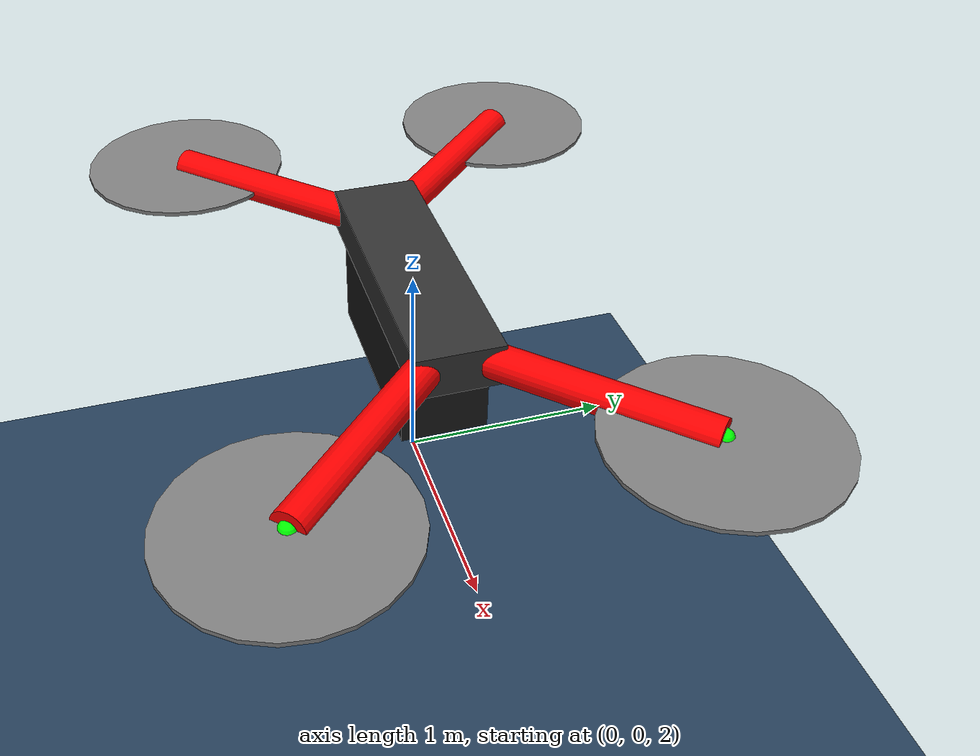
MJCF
<mujoco model="Model quadcopter_v1.2"> <!--v1.2=vetsi podlaha-->
	<statistic center="0 0 0.1" extent="0.6" meansize="0.5"/>
	<option timestep ="0.001" density="1.205" viscosity="1.8e-5"/> <!--density[kg/m3] viscosity[m2/s]-->

	<visual>
		<headlight diffuse="0.6 0.6 0.6" ambient="0.3 0.3 0.3" specular="0 0 0"/>
		<rgba haze="0.15 0.25 0.35 1"/>
		<global azimuth="110" elevation="-40" ellipsoidinertia="true"/>
  	</visual>

	<asset>
		<!--scena-->
		<texture type="skybox" builtin="gradient" rgb1="0.3 0.5 0.7" rgb2="0 0 0" width="512" height="512"/><!--nebo-->

		<texture type="2d" name="podlaha_textura" builtin="checker" mark="edge" rgb1="0.2 0.3 0.4" rgb2="0.1 0.2 0.3" markrgb="0.8 0.8 0.8" width="255" height="255"/>
		<material name="podlaha" texture="podlaha_textura" texuniform="true" texrepeat="3 3" reflectance="0"/><!--podlaha-->

	</asset>

	<worldbody><!--SI units-->
		<!--svetlo a podlaha-->
        <light diffuse="0.6 0.6 0.6" pos="0 0 3" dir="0 0 -1" directional="true"/>
		<geom name="podlaha" type="plane" size="0 0 0.1" material="podlaha"/>

		<!--kvadrokoptera-->
		<body name="kvadrokoptera" pos="0 0 3">
			<joint type="free"/>
			<geom type="box" name="zakladna" size="0.7 0.2 0.1" mass="0.5" rgba="0.2 0.2 0.2 1"/>
			<geom type="box" size="0.5 0.2 0.2" mass="1" pos="0 0 -0.3" rgba="0.1 0.1 0.1 1"/>

			<body euler="-90 45 0" pos="1 0.5 0">
				<geom type="cylinder" size="0.08 0.5" mass="0.2" rgba="1 0 0 1"/>
				<geom type="cylinder" name="rotor1" pos="0 0 0.5" euler="90 0 0" size="0.5 0.01"   mass="0.25"/>
				<site name="thrust1" pos="0 0 0.5" euler="90 0 0" size="0.04" rgba="0 1 0 1"/>
			</body>

			<body euler="-90 -45 0" pos="1 -0.5 0">
				<geom type="cylinder" size="0.08 0.5" mass="0.2"  rgba="1 0 0 1"/>
				<geom type="cylinder" name="rotor2" pos="0 0 -0.5" euler="90 0 0" size="0.5 0.01"   mass="0.25"/>
				<site name="thrust2" pos="0 0 -0.5" euler="90 0 0" size="0.04" rgba="0 1 0 1"/>
			</body>

			<body euler="-90 -45 0" pos="-1 0.5 0">
				<geom type="cylinder" size="0.08 0.5" mass="0.2"  rgba="1 0 0 1"/>
				<geom type="cylinder" name="rotor3" pos="0 0 0.5" euler="90 0 0" size="0.5 0.01"   mass="0.25"/>
				<site name="thrust3" pos="0 0 0.5" euler="90 0 0" size="0.04" rgba="0 1 0 1"/>
			</body>

			<body euler="-90 45 0" pos="-1 -0.5 0">
				<geom type="cylinder" size="0.08 0.5" mass="0.2"  rgba="1 0 0 1"/>
				<geom type="cylinder" name="rotor4" pos="0 0 -0.5" euler="90 0 0" size="0.5 0.01"   mass="0.25"/>
				<site name="thrust4" pos="0 0 -0.5" euler="90 0 0" size="0.04" rgba="0 1 0 1"/>
			</body>
		</body>
	</worldbody>

	<actuator>
		<motor name="thrust1" site="thrust1" gear="0 0 1 0 0 1" ctrlrange="0 10"/>
		<motor name="thrust2" site="thrust2" gear="0 0 1 0 0 -1" ctrlrange="0 10"/>
		<motor name="thrust3" site="thrust3" gear="0 0 1 0 0 -1" ctrlrange="0 10"/>
		<motor name="thrust4" site="thrust4" gear="0 0 1 0 0 1" ctrlrange="0 10"/>
	</actuator>

</mujoco>
